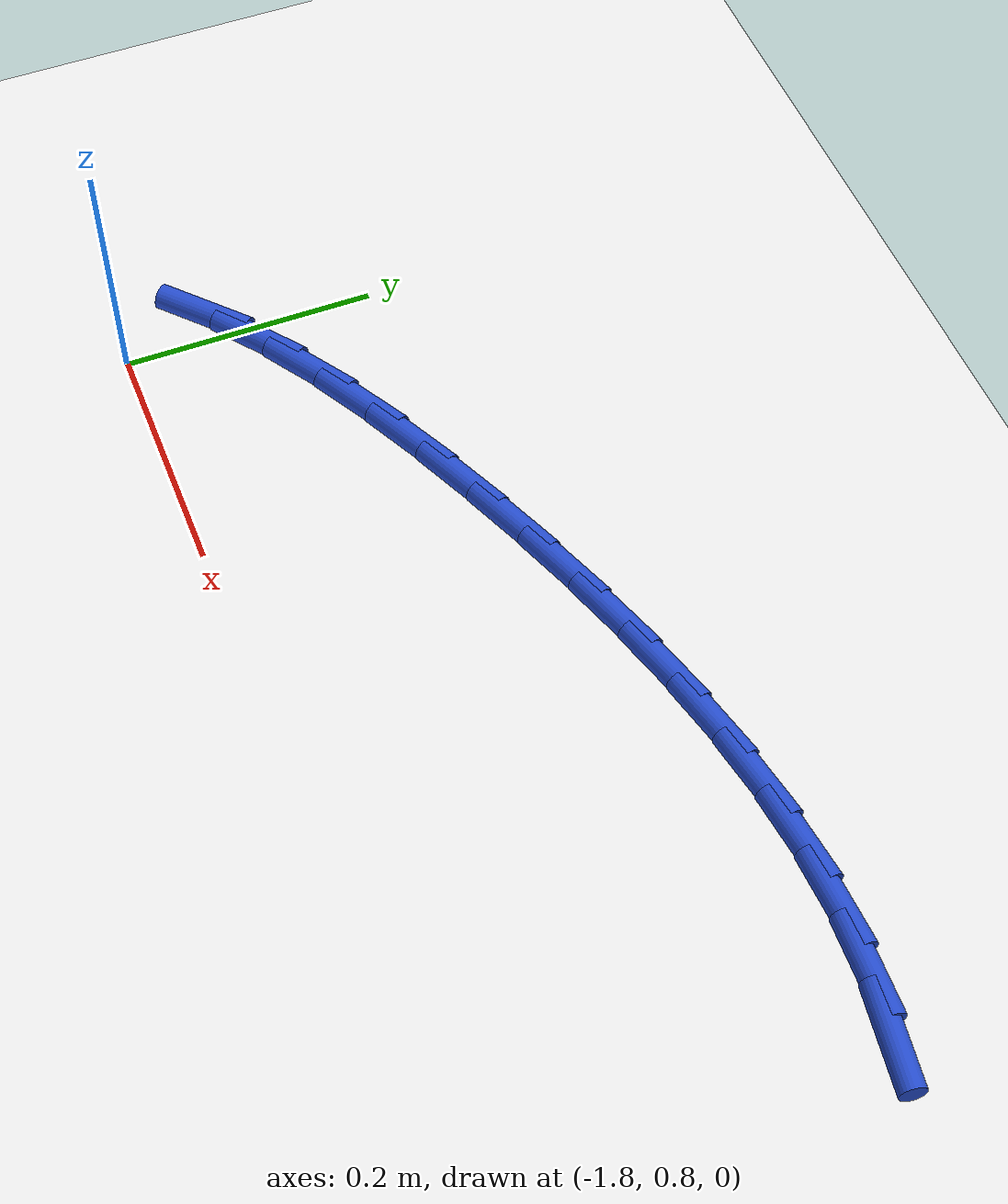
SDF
<sdf version="1.6">
 <world name="default">
  <model name="ground_plane">
   <static>1</static>
   <link name="link">
    <collision name="collision">
     <geometry><plane><normal>0 0 1</normal><size>100 100</size></plane></geometry>
     <surface><friction><ode><mu>100</mu><mu2>50</mu2></ode></friction></surface>
    </collision>
    <visual name="visual">
     <cast_shadows>0</cast_shadows>
     <geometry><plane><normal>0 0 1</normal><size>100 100</size></plane></geometry>
     <material>
      <script><uri>file://media/materials/scripts/gazebo.material</uri><name>Gazebo/WhiteGlow</name></script>
     </material>
    </visual>
   </link>
  </model>
  <model name="line">
   <link name="link_31">
    <pose>-1.0697288175217605 1.0981670103575407 0.01 0 1.57 -0.14122172443363448</pose>
    <collision name="collision">
     <geometry><cylinder><radius>0.01</radius><length>0.08</length></cylinder></geometry>
    </collision>
    <visual name="visual">
     <material>
      <script><name>Gazebo/Blue</name><uri>file://media/materials/scripts/gazebo.material</uri></script>
     </material>
     <geometry><cylinder><radius>0.01</radius><length>0.08</length></cylinder></geometry>
    </visual>
   </link>
   <link name="link_32">
    <pose>-1.1197589710150844 1.1052797020627843 0.01 0 1.57 -0.043270478653364246</pose>
    <collision name="collision">
     <geometry><cylinder><radius>0.01</radius><length>0.08</length></cylinder></geometry>
    </collision>
    <visual name="visual">
     <material>
      <script><name>Gazebo/Blue</name><uri>file://media/materials/scripts/gazebo.material</uri></script>
     </material>
     <geometry><cylinder><radius>0.01</radius><length>0.08</length></cylinder></geometry>
    </visual>
   </link>
   <link name="link_33">
    <pose>-1.171008625756839 1.107498684219327 0.01 0 1.57 0.042823728888955116</pose>
    <collision name="collision">
     <geometry><cylinder><radius>0.01</radius><length>0.08</length></cylinder></geometry>
    </collision>
    <visual name="visual">
     <material>
      <script><name>Gazebo/Blue</name><uri>file://media/materials/scripts/gazebo.material</uri></script>
     </material>
     <geometry><cylinder><radius>0.01</radius><length>0.08</length></cylinder></geometry>
    </visual>
   </link>
   <link name="link_34">
    <pose>-1.2232007668679896 1.1052622548428572 0.01 0 1.57 0.11776181527629079</pose>
    <collision name="collision">
     <geometry><cylinder><radius>0.01</radius><length>0.08</length></cylinder></geometry>
    </collision>
    <visual name="visual">
     <material>
      <script><name>Gazebo/Blue</name><uri>file://media/materials/scripts/gazebo.material</uri></script>
     </material>
     <geometry><cylinder><radius>0.01</radius><length>0.08</length></cylinder></geometry>
    </visual>
   </link>
   <link name="link_35">
    <pose>-1.2760583794695004 1.0990087119490617 0.01 0 1.57 0.1826018944475324</pose>
    <collision name="collision">
     <geometry><cylinder><radius>0.01</radius><length>0.08</length></cylinder></geometry>
    </collision>
    <visual name="visual">
     <material>
      <script><name>Gazebo/Blue</name><uri>file://media/materials/scripts/gazebo.material</uri></script>
     </material>
     <geometry><cylinder><radius>0.01</radius><length>0.08</length></cylinder></geometry>
    </visual>
   </link>
   <link name="link_36">
    <pose>-1.3293044486823355 1.089176353553628 0.01 0 1.57 0.23850353933790883</pose>
    <collision name="collision">
     <geometry><cylinder><radius>0.01</radius><length>0.08</length></cylinder></geometry>
    </collision>
    <visual name="visual">
     <material>
      <script><name>Gazebo/Blue</name><uri>file://media/materials/scripts/gazebo.material</uri></script>
     </material>
     <geometry><cylinder><radius>0.01</radius><length>0.08</length></cylinder></geometry>
    </visual>
   </link>
   <link name="link_37">
    <pose>-1.3826619596274605 1.0762034776722447 0.01 0 1.57 0.28657750698022166</pose>
    <collision name="collision">
     <geometry><cylinder><radius>0.01</radius><length>0.08</length></cylinder></geometry>
    </collision>
    <visual name="visual">
     <material>
      <script><name>Gazebo/Blue</name><uri>file://media/materials/scripts/gazebo.material</uri></script>
     </material>
     <geometry><cylinder><radius>0.01</radius><length>0.08</length></cylinder></geometry>
    </visual>
   </link>
   <link name="link_38">
    <pose>-1.4358538974258397 1.0605283823205984 0.01 0 1.57 0.3278105200895518</pose>
    <collision name="collision">
     <geometry><cylinder><radius>0.01</radius><length>0.08</length></cylinder></geometry>
    </collision>
    <visual name="visual">
     <material>
      <script><name>Gazebo/Blue</name><uri>file://media/materials/scripts/gazebo.material</uri></script>
     </material>
     <geometry><cylinder><radius>0.01</radius><length>0.08</length></cylinder></geometry>
    </visual>
   </link>
   <link name="link_39">
    <pose>-1.4886032471984376 1.0425893655143768 0.01 0 1.57 0.3630350930851117</pose>
    <collision name="collision">
     <geometry><cylinder><radius>0.01</radius><length>0.08</length></cylinder></geometry>
    </collision>
    <visual name="visual">
     <material>
      <script><name>Gazebo/Blue</name><uri>file://media/materials/scripts/gazebo.material</uri></script>
     </material>
     <geometry><cylinder><radius>0.01</radius><length>0.08</length></cylinder></geometry>
    </visual>
   </link>
   <link name="link_40">
    <pose>-1.540632994066219 1.0228247252692677 0.01 0 1.57 0.39292237075975345</pose>
    <collision name="collision">
     <geometry><cylinder><radius>0.01</radius><length>0.08</length></cylinder></geometry>
    </collision>
    <visual name="visual">
     <material>
      <script><name>Gazebo/Blue</name><uri>file://media/materials/scripts/gazebo.material</uri></script>
     </material>
     <geometry><cylinder><radius>0.01</radius><length>0.08</length></cylinder></geometry>
    </visual>
   </link>
   <link name="link_41">
    <pose>-1.5916661231501479 1.0016727596009585 0.01 0 1.57 0.4203307719446151</pose>
    <collision name="collision">
     <geometry><cylinder><radius>0.01</radius><length>0.08</length></cylinder></geometry>
    </collision>
    <visual name="visual">
     <material>
      <script><name>Gazebo/Blue</name><uri>file://media/materials/scripts/gazebo.material</uri></script>
     </material>
     <geometry><cylinder><radius>0.01</radius><length>0.08</length></cylinder></geometry>
    </visual>
   </link>
   <link name="link_42">
    <pose>-1.6414139795201146 0.9794369929870286 0.01 0 1.57 0.45715521642205575</pose>
    <collision name="collision">
     <geometry><cylinder><radius>0.01</radius><length>0.08</length></cylinder></geometry>
    </collision>
    <visual name="visual">
     <material>
      <script><name>Gazebo/Blue</name><uri>file://media/materials/scripts/gazebo.material</uri></script>
     </material>
     <geometry><cylinder><radius>0.01</radius><length>0.08</length></cylinder></geometry>
    </visual>
   </link>
   <link name="link_43">
    <pose>-1.68953147026492 0.9557674865872654 0.01 0 1.57 0.5075289512736173</pose>
    <collision name="collision">
     <geometry><cylinder><radius>0.01</radius><length>0.08</length></cylinder></geometry>
    </collision>
    <visual name="visual">
     <material>
      <script><name>Gazebo/Blue</name><uri>file://media/materials/scripts/gazebo.material</uri></script>
     </material>
     <geometry><cylinder><radius>0.01</radius><length>0.08</length></cylinder></geometry>
    </visual>
   </link>
   <link name="link_44">
    <pose>-1.7356564210519008 0.9301165254871181 0.01 0 1.57 0.5720188443527544</pose>
    <collision name="collision">
     <geometry><cylinder><radius>0.01</radius><length>0.08</length></cylinder></geometry>
    </collision>
    <visual name="visual">
     <material>
      <script><name>Gazebo/Blue</name><uri>file://media/materials/scripts/gazebo.material</uri></script>
     </material>
     <geometry><cylinder><radius>0.01</radius><length>0.08</length></cylinder></geometry>
    </visual>
   </link>
   <link name="link_45">
    <pose>-1.7794266538309111 0.9019363517294141 0.01 0 1.57 0.6507439184388437</pose>
    <collision name="collision">
     <geometry><cylinder><radius>0.01</radius><length>0.08</length></cylinder></geometry>
    </collision>
    <visual name="visual">
     <material>
      <script><name>Gazebo/Blue</name><uri>file://media/materials/scripts/gazebo.material</uri></script>
     </material>
     <geometry><cylinder><radius>0.01</radius><length>0.08</length></cylinder></geometry>
    </visual>
   </link>
   <link name="link_46">
    <pose>-1.8204799905518037 0.8706792073569792 0.01 0 1.57 0.7419558308703026</pose>
    <collision name="collision">
     <geometry><cylinder><radius>0.01</radius><length>0.08</length></cylinder></geometry>
    </collision>
    <visual name="visual">
     <material>
      <script><name>Gazebo/Blue</name><uri>file://media/materials/scripts/gazebo.material</uri></script>
     </material>
     <geometry><cylinder><radius>0.01</radius><length>0.08</length></cylinder></geometry>
    </visual>
   </link>
  </model>
 </world>
</sdf>
